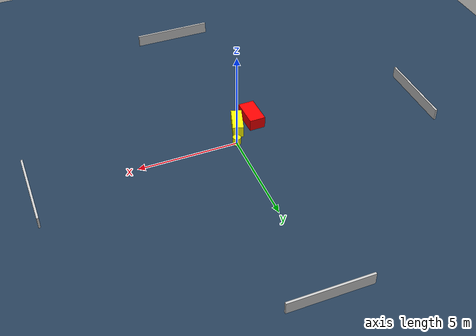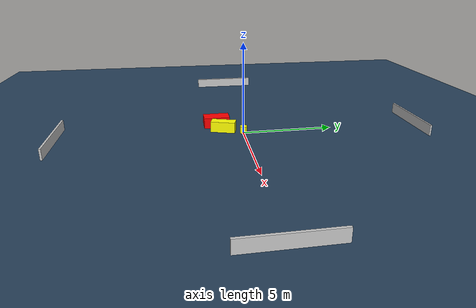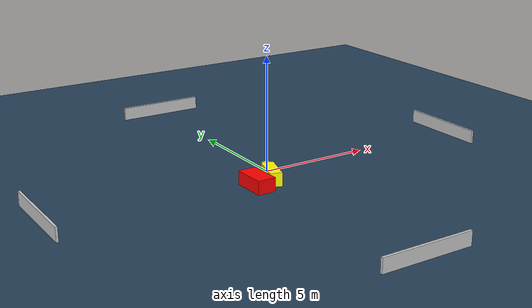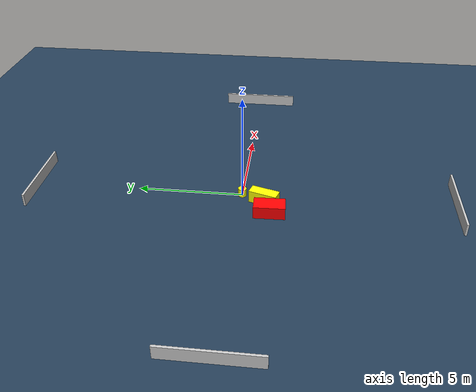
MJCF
<?xml version="1.0" ?>
<mujoco model="generated_environment">
  <option timestep="0.01" integrator="RK4" cone="elliptic"/>
  <default>
    <geom density="1"/>
  </default>
  <asset>
    <texture builtin="gradient" height="3072" name="skybox" rgb1="0.3 0.5 0.7" rgb2="0 0 0" type="skybox" width="512"/>
    <texture builtin="checker" height="300" name="groundplane" rgb1="0.2 0.3 0.4" rgb2="0.1 0.2 0.3" type="2d" width="300"/>
    <material name="groundplane" reflectance="0.2" texrepeat="5 5" texture="groundplane"/>
  </asset>
  <worldbody>
    <light dir="0 0 -1" directional="true" pos="0 0 1.5"/>
    <geom condim="3" friction="0.5 0.005 0.001" material="groundplane" name="floor" pos="0 0 0" size="0 0 0.05" type="plane"/>
    <body name="walls">
      <geom name="wall_1" condim="4" pos="-10.0 0.0 0.3" rgba="0.800000011920929 0.800000011920929 0.800000011920929 1.0" size="0.05 2.0 0.3" type="box"/>
      <geom name="wall_2" condim="4" pos="10.0 0.0 0.3" rgba="0.800000011920929 0.800000011920929 0.800000011920929 1.0" size="0.05 2.0 0.3" type="box"/>
      <geom name="wall_3" condim="4" pos="0.0 -10.0 0.3" rgba="0.800000011920929 0.800000011920929 0.800000011920929 1.0" size="2.0 0.05 0.3" type="box"/>
      <geom name="wall_4" condim="4" pos="0.0 10.0 0.3" rgba="0.800000011920929 0.800000011920929 0.800000011920929 1.0" size="2.0 0.05 0.3" type="box"/>
    </body>
    <body name="robot">
      <joint name="joint_x" type="slide" pos="0 0 0" axis="1 0 0"/>
      <joint name="joint_y" type="slide" pos="0 0 0" axis="0 1 0"/>
      <geom name="robot" type="cylinder" pos="0.0 0.0 0.2" size="0.2 0.2 0.0" mass="5.0" friction="1.0 0.005 0.0001" condim="4" rgba="1.0 1.0 0.0 1.0"/>
    </body>
    <body name="obstacle_1_movable">
      <geom name="obstacle_1_movable" condim="4" pos="-0.4455455645318422 -1.065468419672489 0.3" euler="0 0 342.7819608040103" friction="0.0 0.005 0.001" rgba="1.0 1.0 0.0 1.0" size="0.26770525953760954 0.6798829631511127 0.3" type="box" mass="0.1"/>
      <joint type="free"/>
    </body>
    <body name="obstacle_2_static">
      <geom name="obstacle_2_static" condim="4" pos="-1.3559695716434055 -1.3839937499592327 0.3" euler="0 0 1.4240198505184454" friction="0.0 0.005 0.001" rgba="1.0 0.0 0.0 1.0" size="0.40149674832220333 0.7301867693562567 0.3" type="box"/>
    </body>
  </worldbody>
  <actuator>
    <motor name="actuator_x" joint="joint_x" gear="1" ctrlrange="-1 1"/>
    <motor name="actuator_y" joint="joint_y" gear="1" ctrlrange="-1 1"/>
  </actuator>
</mujoco>
